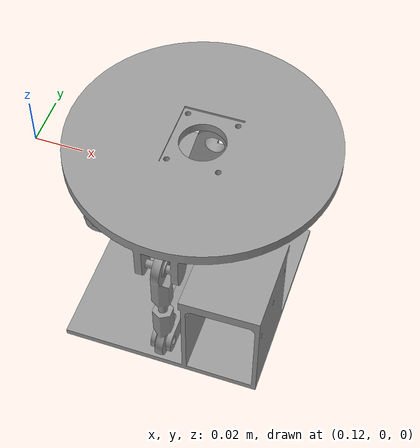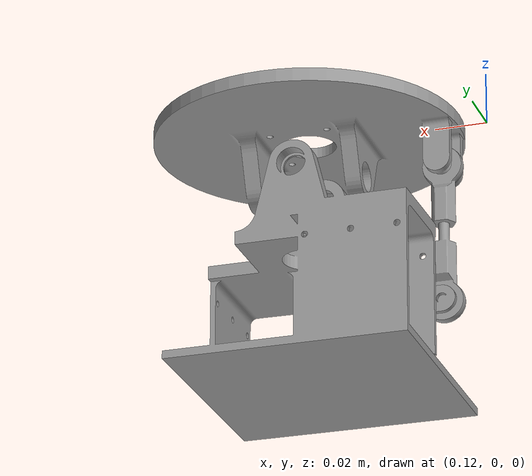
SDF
<?xml version='1.0'?>
<sdf version='1.7'>
  <model name='2dof_trial2'>
    <link name='link_0'>
      <inertial>
        <mass>1</mass>
        <inertia>
          <ixx>0.166667</ixx>
          <ixy>0</ixy>
          <ixz>0</ixz>
          <iyy>0.166667</iyy>
          <iyz>0</iyz>
          <izz>0.166667</izz>
        </inertia>
        <pose>0 0 0 0 -0 0</pose>
      </inertial>
      <pose>0.238173 -0.030635 -0.036457 0 -0 1.5707</pose>
      <gravity>1</gravity>
      <self_collide>1</self_collide>
      <kinematic>0</kinematic>
      <enable_wind>0</enable_wind>
      <visual name='visual'>
        <pose>0 0 0 0 -0 0</pose>
        <geometry>
          <mesh>
            <uri>/home/sid/plugin_ws/src/model/models/2dof_trial1/meshes/new_top_fixture.stl</uri>
            <scale>0.001 0.001 0.001</scale>
          </mesh>
        </geometry>
        <material>
          <lighting>1</lighting>
          <script>
            <uri>file://media/materials/scripts/gazebo.material</uri>
            <name>Gazebo/Grey</name>
          </script>
          <shader type='pixel'>
            <normal_map>__default__</normal_map>
          </shader>
          <ambient>0.3 0.3 0.3 1</ambient>
          <diffuse>0.7 0.7 0.7 1</diffuse>
          <specular>0.01 0.01 0.01 1</specular>
          <emissive>0 0 0 1</emissive>
        </material>
        <transparency>0</transparency>
        <cast_shadows>1</cast_shadows>
      </visual>
      <collision name='collision'>
        <laser_retro>0</laser_retro>
        <max_contacts>10</max_contacts>
        <pose>0 0 0 0 -0 0</pose>
        <geometry>
          <mesh>
            <uri>/home/sid/plugin_ws/src/model/models/2dof_trial1/meshes/new_top_fixture.stl</uri>
            <scale>0.001 0.001 0.001</scale>
          </mesh>
        </geometry>
        <surface>
          <friction>
            <ode>
              <mu>1</mu>
              <mu2>1</mu2>
              <fdir1>0 0 0</fdir1>
              <slip1>0</slip1>
              <slip2>0</slip2>
            </ode>
            <torsional>
              <coefficient>1</coefficient>
              <patch_radius>0</patch_radius>
              <surface_radius>0</surface_radius>
              <use_patch_radius>1</use_patch_radius>
              <ode>
                <slip>0</slip>
              </ode>
            </torsional>
          </friction>
          <bounce>
            <restitution_coefficient>0</restitution_coefficient>
            <threshold>1e+06</threshold>
          </bounce>
          <contact>
            <collide_without_contact>0</collide_without_contact>
            <collide_without_contact_bitmask>1</collide_without_contact_bitmask>
            <collide_bitmask>1</collide_bitmask>
            <ode>
              <soft_cfm>0</soft_cfm>
              <soft_erp>0.2</soft_erp>
              <kp>1e+13</kp>
              <kd>1</kd>
              <max_vel>0.01</max_vel>
              <min_depth>0</min_depth>
            </ode>
            <bullet>
              <split_impulse>1</split_impulse>
              <split_impulse_penetration_threshold>-0.01</split_impulse_penetration_threshold>
              <soft_cfm>0</soft_cfm>
              <soft_erp>0.2</soft_erp>
              <kp>1e+13</kp>
              <kd>1</kd>
            </bullet>
          </contact>
        </surface>
      </collision>
    </link>
    <link name='link_1'>
      <inertial>
        <mass>1</mass>
        <inertia>
          <ixx>0.166667</ixx>
          <ixy>0</ixy>
          <ixz>0</ixz>
          <iyy>0.166667</iyy>
          <iyz>0</iyz>
          <izz>0.166667</izz>
        </inertia>
        <pose>0 0 0 0 -0 0</pose>
      </inertial>
      <pose>0.122184 0.019356 -0.08847 0 -1e-06 0</pose>
      <gravity>1</gravity>
      <self_collide>1</self_collide>
      <kinematic>0</kinematic>
      <enable_wind>0</enable_wind>
      <visual name='visual'>
        <pose>0 0 0 0 -0 0</pose>
        <geometry>
          <mesh>
            <uri>/home/sid/plugin_ws/src/model/models/2dof_trial1/meshes/link2.stl</uri>
            <scale>0.001 0.001 0.001</scale>
          </mesh>
        </geometry>
        <material>
          <lighting>1</lighting>
          <script>
            <uri>file://media/materials/scripts/gazebo.material</uri>
            <name>Gazebo/Grey</name>
          </script>
          <shader type='pixel'>
            <normal_map>__default__</normal_map>
          </shader>
          <ambient>0.3 0.3 0.3 1</ambient>
          <diffuse>0.7 0.7 0.7 1</diffuse>
          <specular>0.01 0.01 0.01 1</specular>
          <emissive>0 0 0 1</emissive>
        </material>
        <transparency>0</transparency>
        <cast_shadows>1</cast_shadows>
      </visual>
      <collision name='collision'>
        <laser_retro>0</laser_retro>
        <max_contacts>10</max_contacts>
        <pose>0 0 0 0 -0 0</pose>
        <geometry>
          <mesh>
            <uri>/home/sid/plugin_ws/src/model/models/2dof_trial1/meshes/link2.stl</uri>
            <scale>0.001 0.001 0.001</scale>
          </mesh>
        </geometry>
        <surface>
          <friction>
            <ode>
              <mu>1</mu>
              <mu2>1</mu2>
              <fdir1>0 0 0</fdir1>
              <slip1>0</slip1>
              <slip2>0</slip2>
            </ode>
            <torsional>
              <coefficient>1</coefficient>
              <patch_radius>0</patch_radius>
              <surface_radius>0</surface_radius>
              <use_patch_radius>1</use_patch_radius>
              <ode>
                <slip>0</slip>
              </ode>
            </torsional>
          </friction>
          <bounce>
            <restitution_coefficient>0</restitution_coefficient>
            <threshold>1e+06</threshold>
          </bounce>
          <contact>
            <collide_without_contact>0</collide_without_contact>
            <collide_without_contact_bitmask>1</collide_without_contact_bitmask>
            <collide_bitmask>1</collide_bitmask>
            <ode>
              <soft_cfm>0</soft_cfm>
              <soft_erp>0.2</soft_erp>
              <kp>1e+13</kp>
              <kd>1</kd>
              <max_vel>0.01</max_vel>
              <min_depth>0</min_depth>
            </ode>
            <bullet>
              <split_impulse>1</split_impulse>
              <split_impulse_penetration_threshold>-0.01</split_impulse_penetration_threshold>
              <soft_cfm>0</soft_cfm>
              <soft_erp>0.2</soft_erp>
              <kp>1e+13</kp>
              <kd>1</kd>
            </bullet>
          </contact>
        </surface>
      </collision>
    </link>
    <link name='link_1_clone'>
      <inertial>
        <mass>1</mass>
        <inertia>
          <ixx>0.166667</ixx>
          <ixy>0</ixy>
          <ixz>0</ixz>
          <iyy>0.166667</iyy>
          <iyz>0</iyz>
          <izz>0.166667</izz>
        </inertia>
        <pose>0 0 0 0 -0 0</pose>
      </inertial>
      <pose>0.18819 -0.031664 -0.088468 0 -0 1.5707</pose>
      <gravity>1</gravity>
      <self_collide>1</self_collide>
      <kinematic>0</kinematic>
      <enable_wind>0</enable_wind>
      <visual name='visual'>
        <pose>0 0 0 0 -0 0</pose>
        <geometry>
          <mesh>
            <uri>/home/sid/plugin_ws/src/model/models/2dof_trial1/meshes/link2.stl</uri>
            <scale>0.001 0.001 0.001</scale>
          </mesh>
        </geometry>
        <material>
          <lighting>1</lighting>
          <script>
            <uri>file://media/materials/scripts/gazebo.material</uri>
            <name>Gazebo/Grey</name>
          </script>
          <shader type='pixel'>
            <normal_map>__default__</normal_map>
          </shader>
          <ambient>0.3 0.3 0.3 1</ambient>
          <diffuse>0.7 0.7 0.7 1</diffuse>
          <specular>0.01 0.01 0.01 1</specular>
          <emissive>0 0 0 1</emissive>
        </material>
        <transparency>0</transparency>
        <cast_shadows>1</cast_shadows>
      </visual>
      <collision name='collision'>
        <laser_retro>0</laser_retro>
        <max_contacts>10</max_contacts>
        <pose>0 0 0 0 -0 0</pose>
        <geometry>
          <mesh>
            <uri>/home/sid/plugin_ws/src/model/models/2dof_trial1/meshes/link2.stl</uri>
            <scale>0.001 0.001 0.001</scale>
          </mesh>
        </geometry>
        <surface>
          <friction>
            <ode>
              <mu>1</mu>
              <mu2>1</mu2>
              <fdir1>0 0 0</fdir1>
              <slip1>0</slip1>
              <slip2>0</slip2>
            </ode>
            <torsional>
              <coefficient>1</coefficient>
              <patch_radius>0</patch_radius>
              <surface_radius>0</surface_radius>
              <use_patch_radius>1</use_patch_radius>
              <ode>
                <slip>0</slip>
              </ode>
            </torsional>
          </friction>
          <bounce>
            <restitution_coefficient>0</restitution_coefficient>
            <threshold>1e+06</threshold>
          </bounce>
          <contact>
            <collide_without_contact>0</collide_without_contact>
            <collide_without_contact_bitmask>1</collide_without_contact_bitmask>
            <collide_bitmask>1</collide_bitmask>
            <ode>
              <soft_cfm>0</soft_cfm>
              <soft_erp>0.2</soft_erp>
              <kp>1e+13</kp>
              <kd>1</kd>
              <max_vel>0.01</max_vel>
              <min_depth>0</min_depth>
            </ode>
            <bullet>
              <split_impulse>1</split_impulse>
              <split_impulse_penetration_threshold>-0.01</split_impulse_penetration_threshold>
              <soft_cfm>0</soft_cfm>
              <soft_erp>0.2</soft_erp>
              <kp>1e+13</kp>
              <kd>1</kd>
            </bullet>
          </contact>
        </surface>
      </collision>
    </link>
    <link name='link_3'>
      <inertial>
        <mass>1</mass>
        <inertia>
          <ixx>0.166667</ixx>
          <ixy>0</ixy>
          <ixz>0</ixz>
          <iyy>0.166667</iyy>
          <iyz>0</iyz>
          <izz>0.166667</izz>
        </inertia>
        <pose>0 0 0 0 -0 0</pose>
      </inertial>
      <pose>0.22197 -0.022765 -0.019461 3.14159 0.000193 3.14159</pose>
      <gravity>1</gravity>
      <self_collide>1</self_collide>
      <kinematic>0</kinematic>
      <enable_wind>0</enable_wind>
      <visual name='visual'>
        <pose>0 0 0 0 -0 0</pose>
        <geometry>
          <mesh>
            <uri>/home/sid/plugin_ws/src/model/models/2dof_trial1/meshes/new_bottom_fixture.stl</uri>
            <scale>0.001 0.001 0.001</scale>
          </mesh>
        </geometry>
        <material>
          <lighting>1</lighting>
          <script>
            <uri>file://media/materials/scripts/gazebo.material</uri>
            <name>Gazebo/Grey</name>
          </script>
          <shader type='pixel'>
            <normal_map>__default__</normal_map>
          </shader>
          <ambient>0.3 0.3 0.3 1</ambient>
          <diffuse>0.7 0.7 0.7 1</diffuse>
          <specular>0.01 0.01 0.01 1</specular>
          <emissive>0 0 0 1</emissive>
        </material>
        <transparency>0</transparency>
        <cast_shadows>1</cast_shadows>
      </visual>
      <collision name='collision'>
        <laser_retro>0</laser_retro>
        <max_contacts>10</max_contacts>
        <pose>0 0 0 0 -0 0</pose>
        <geometry>
          <mesh>
            <uri>/home/sid/plugin_ws/src/model/models/2dof_trial1/meshes/new_bottom_fixture.stl</uri>
            <scale>0.001 0.001 0.001</scale>
          </mesh>
        </geometry>
        <surface>
          <friction>
            <ode>
              <mu>1</mu>
              <mu2>1</mu2>
              <fdir1>0 0 0</fdir1>
              <slip1>0</slip1>
              <slip2>0</slip2>
            </ode>
            <torsional>
              <coefficient>1</coefficient>
              <patch_radius>0</patch_radius>
              <surface_radius>0</surface_radius>
              <use_patch_radius>1</use_patch_radius>
              <ode>
                <slip>0</slip>
              </ode>
            </torsional>
          </friction>
          <bounce>
            <restitution_coefficient>0</restitution_coefficient>
            <threshold>1e+06</threshold>
          </bounce>
          <contact>
            <collide_without_contact>0</collide_without_contact>
            <collide_without_contact_bitmask>1</collide_without_contact_bitmask>
            <collide_bitmask>1</collide_bitmask>
            <ode>
              <soft_cfm>0</soft_cfm>
              <soft_erp>0.2</soft_erp>
              <kp>1e+13</kp>
              <kd>1</kd>
              <max_vel>0.01</max_vel>
              <min_depth>0</min_depth>
            </ode>
            <bullet>
              <split_impulse>1</split_impulse>
              <split_impulse_penetration_threshold>-0.01</split_impulse_penetration_threshold>
              <soft_cfm>0</soft_cfm>
              <soft_erp>0.2</soft_erp>
              <kp>1e+13</kp>
              <kd>1</kd>
            </bullet>
          </contact>
        </surface>
      </collision>
    </link>
    <link name='link_4'>
      <inertial>
        <mass>1</mass>
        <inertia>
          <ixx>0.166667</ixx>
          <ixy>0</ixy>
          <ixz>0</ixz>
          <iyy>0.166667</iyy>
          <iyz>0</iyz>
          <izz>0.166667</izz>
        </inertia>
        <pose>0 0 0 0 -0 0</pose>
      </inertial>
      <pose>0.175684 0.022346 -0.091969 1.5707 -0 3.1414</pose>
      <gravity>1</gravity>
      <self_collide>1</self_collide>
      <kinematic>0</kinematic>
      <enable_wind>0</enable_wind>
      <visual name='visual'>
        <pose>0 0 0 0 -0 0</pose>
        <geometry>
          <mesh>
            <uri>/home/sid/plugin_ws/src/model/models/2dof_trial1/meshes/m_link.stl</uri>
            <scale>0.001 0.001 0.001</scale>
          </mesh>
        </geometry>
        <material>
          <lighting>1</lighting>
          <script>
            <uri>file://media/materials/scripts/gazebo.material</uri>
            <name>Gazebo/Grey</name>
          </script>
          <shader type='pixel'>
            <normal_map>__default__</normal_map>
          </shader>
          <ambient>0.3 0.3 0.3 1</ambient>
          <diffuse>0.7 0.7 0.7 1</diffuse>
          <specular>0.01 0.01 0.01 1</specular>
          <emissive>0 0 0 1</emissive>
        </material>
        <transparency>0</transparency>
        <cast_shadows>1</cast_shadows>
      </visual>
      <collision name='collision'>
        <laser_retro>0</laser_retro>
        <max_contacts>10</max_contacts>
        <pose>0 0 0 0 -0 0</pose>
        <geometry>
          <mesh>
            <uri>/home/sid/plugin_ws/src/model/models/2dof_trial1/meshes/m_link.stl</uri>
            <scale>0.001 0.001 0.001</scale>
          </mesh>
        </geometry>
        <surface>
          <friction>
            <ode>
              <mu>1</mu>
              <mu2>1</mu2>
              <fdir1>0 0 0</fdir1>
              <slip1>0</slip1>
              <slip2>0</slip2>
            </ode>
            <torsional>
              <coefficient>1</coefficient>
              <patch_radius>0</patch_radius>
              <surface_radius>0</surface_radius>
              <use_patch_radius>1</use_patch_radius>
              <ode>
                <slip>0</slip>
              </ode>
            </torsional>
          </friction>
          <bounce>
            <restitution_coefficient>0</restitution_coefficient>
            <threshold>1e+06</threshold>
          </bounce>
          <contact>
            <collide_without_contact>0</collide_without_contact>
            <collide_without_contact_bitmask>1</collide_without_contact_bitmask>
            <collide_bitmask>1</collide_bitmask>
            <ode>
              <soft_cfm>0</soft_cfm>
              <soft_erp>0.2</soft_erp>
              <kp>1e+13</kp>
              <kd>1</kd>
              <max_vel>0.01</max_vel>
              <min_depth>0</min_depth>
            </ode>
            <bullet>
              <split_impulse>1</split_impulse>
              <split_impulse_penetration_threshold>-0.01</split_impulse_penetration_threshold>
              <soft_cfm>0</soft_cfm>
              <soft_erp>0.2</soft_erp>
              <kp>1e+13</kp>
              <kd>1</kd>
            </bullet>
          </contact>
        </surface>
      </collision>
    </link>
    <link name='link_4_clone'>
      <inertial>
        <mass>1</mass>
        <inertia>
          <ixx>0.166667</ixx>
          <ixy>0</ixy>
          <ixz>0</ixz>
          <iyy>0.166667</iyy>
          <iyz>0</iyz>
          <izz>0.166667</izz>
        </inertia>
        <pose>0 0 0 0 -0 0</pose>
      </inertial>
      <pose>0.185184 0.021836 -0.091968 1.5707 -0 -1.5707</pose>
      <gravity>1</gravity>
      <self_collide>1</self_collide>
      <kinematic>0</kinematic>
      <enable_wind>0</enable_wind>
      <visual name='visual'>
        <pose>0 0 0 0 -0 0</pose>
        <geometry>
          <mesh>
            <uri>/home/sid/plugin_ws/src/model/models/2dof_trial1/meshes/m_link.stl</uri>
            <scale>0.001 0.001 0.001</scale>
          </mesh>
        </geometry>
        <material>
          <lighting>1</lighting>
          <script>
            <uri>file://media/materials/scripts/gazebo.material</uri>
            <name>Gazebo/Grey</name>
          </script>
          <shader type='pixel'>
            <normal_map>__default__</normal_map>
          </shader>
          <ambient>0.3 0.3 0.3 1</ambient>
          <diffuse>0.7 0.7 0.7 1</diffuse>
          <specular>0.01 0.01 0.01 1</specular>
          <emissive>0 0 0 1</emissive>
        </material>
        <transparency>0</transparency>
        <cast_shadows>1</cast_shadows>
      </visual>
      <collision name='collision'>
        <laser_retro>0</laser_retro>
        <max_contacts>10</max_contacts>
        <pose>0 0 0 0 -0 0</pose>
        <geometry>
          <mesh>
            <uri>/home/sid/plugin_ws/src/model/models/2dof_trial1/meshes/m_link.stl</uri>
            <scale>0.001 0.001 0.001</scale>
          </mesh>
        </geometry>
        <surface>
          <friction>
            <ode>
              <mu>1</mu>
              <mu2>1</mu2>
              <fdir1>0 0 0</fdir1>
              <slip1>0</slip1>
              <slip2>0</slip2>
            </ode>
            <torsional>
              <coefficient>1</coefficient>
              <patch_radius>0</patch_radius>
              <surface_radius>0</surface_radius>
              <use_patch_radius>1</use_patch_radius>
              <ode>
                <slip>0</slip>
              </ode>
            </torsional>
          </friction>
          <bounce>
            <restitution_coefficient>0</restitution_coefficient>
            <threshold>1e+06</threshold>
          </bounce>
          <contact>
            <collide_without_contact>0</collide_without_contact>
            <collide_without_contact_bitmask>1</collide_without_contact_bitmask>
            <collide_bitmask>1</collide_bitmask>
            <ode>
              <soft_cfm>0</soft_cfm>
              <soft_erp>0.2</soft_erp>
              <kp>1e+13</kp>
              <kd>1</kd>
              <max_vel>0.01</max_vel>
              <min_depth>0</min_depth>
            </ode>
            <bullet>
              <split_impulse>1</split_impulse>
              <split_impulse_penetration_threshold>-0.01</split_impulse_penetration_threshold>
              <soft_cfm>0</soft_cfm>
              <soft_erp>0.2</soft_erp>
              <kp>1e+13</kp>
              <kd>1</kd>
            </bullet>
          </contact>
        </surface>
      </collision>
    </link>
    <joint name='joint2' type='revolute'>
      <parent>link_3</parent>
      <child>link_4_clone</child>
      <pose>0.011 0.011 0.0045 0 -0 0</pose>
      <axis>
        <xyz>0 0 1</xyz>
        <limit>
          <lower>-1.79769e+308</lower>
          <upper>1.79769e+308</upper>
          <effort>-1</effort>
          <velocity>-1</velocity>
        </limit>
        <dynamics>
          <spring_reference>0</spring_reference>
          <spring_stiffness>0</spring_stiffness>
          <damping>0</damping>
          <friction>0</friction>
        </dynamics>
      </axis>
      <physics>
        <ode>
          <limit>
            <cfm>0</cfm>
            <erp>0.2</erp>
          </limit>
          <suspension>
            <cfm>0</cfm>
            <erp>0.2</erp>
          </suspension>
        </ode>
      </physics>
    </joint>
    <joint name='link3_joint1' type='revolute'>
      <parent>link_3</parent>
      <child>link_4</child>
      <pose>0.011 0.011 0.0045 0 -0 0</pose>
      <axis>
        <xyz>-0 -0 -1</xyz>
        <limit>
          <lower>-1.79769e+308</lower>
          <upper>1.79769e+308</upper>
          <effort>-1</effort>
          <velocity>-1</velocity>
        </limit>
        <dynamics>
          <spring_reference>0</spring_reference>
          <spring_stiffness>0</spring_stiffness>
          <damping>0</damping>
          <friction>0</friction>
        </dynamics>
      </axis>
      <physics>
        <ode>
          <limit>
            <cfm>0</cfm>
            <erp>0.2</erp>
          </limit>
          <suspension>
            <cfm>0</cfm>
            <erp>0.2</erp>
          </suspension>
        </ode>
      </physics>
    </joint>
    <joint name='link_1_JOINT_8' type='ball'>
      <parent>link_1</parent>
      <child>link_0</child>
      <pose>0.0572 0.1085 0.0085 0 -0 0</pose>
      <physics>
        <ode>
          <limit>
            <cfm>0</cfm>
            <erp>0.2</erp>
          </limit>
          <suspension>
            <cfm>0</cfm>
            <erp>0.2</erp>
          </suspension>
        </ode>
      </physics>
    </joint>
    <joint name='link_1_clone_JOINT_7' type='ball'>
      <parent>link_1_clone</parent>
      <child>link_0</child>
      <pose>0.0065 0.0572 0.0085 0 -0 0</pose>
      <physics>
        <ode>
          <limit>
            <cfm>0</cfm>
            <erp>0.2</erp>
          </limit>
          <suspension>
            <cfm>0</cfm>
            <erp>0.2</erp>
          </suspension>
        </ode>
      </physics>
    </joint>
    <joint name='link_3_JOINT_6' type='universal'>
      <parent>link_3</parent>
      <child>link_0</child>
      <pose>0.0575 0.0575 0.0085 0 -0 0</pose>
      <axis>
        <xyz>1 0 0</xyz>
        <limit>
          <lower>-1.79769e+308</lower>
          <upper>1.79769e+308</upper>
          <effort>-1</effort>
          <velocity>-1</velocity>
        </limit>
        <dynamics>
          <spring_reference>0</spring_reference>
          <spring_stiffness>0</spring_stiffness>
          <damping>0</damping>
          <friction>0</friction>
        </dynamics>
      </axis>
      <axis2>
        <xyz>0 1 0</xyz>
        <limit>
          <lower>-1.79769e+308</lower>
          <upper>1.79769e+308</upper>
          <effort>-1</effort>
          <velocity>-1</velocity>
        </limit>
        <dynamics>
          <spring_reference>0</spring_reference>
          <spring_stiffness>0</spring_stiffness>
          <damping>0</damping>
          <friction>0</friction>
        </dynamics>
      </axis2>
      <physics>
        <ode>
          <limit>
            <cfm>0</cfm>
            <erp>0.2</erp>
          </limit>
          <suspension>
            <cfm>0</cfm>
            <erp>0.2</erp>
          </suspension>
        </ode>
      </physics>
    </joint>
    <joint name='link_4_JOINT_2' type='ball'>
      <parent>link_4</parent>
      <child>link_1</child>
      <pose>0.0075 0.0075 0.0075 0 -0 0</pose>
      <physics>
        <ode>
          <limit>
            <cfm>0</cfm>
            <erp>0.2</erp>
          </limit>
          <suspension>
            <cfm>0</cfm>
            <erp>0.2</erp>
          </suspension>
        </ode>
      </physics>
    </joint>
    <joint name='link_4_clone_JOINT_3' type='ball'>
      <parent>link_4_clone</parent>
      <child>link_1_clone</child>
      <pose>0.0075 0.0075 0.0075 0 -0 0</pose>
      <physics>
        <ode>
          <limit>
            <cfm>0</cfm>
            <erp>0.2</erp>
          </limit>
          <suspension>
            <cfm>0</cfm>
            <erp>0.2</erp>
          </suspension>
        </ode>
      </physics>
    </joint>
    <static>0</static>
    <allow_auto_disable>1</allow_auto_disable>
    <plugin name='joint_pose' filename='libjoint_pose.so'>
      <namespace_model>simple_robot</namespace_model>
      <activate_pid_control>yes</activate_pid_control>
      <kp>0.1</kp>
      <ki>0</ki>
      <kd>10</kd>
      <robotNamespace>/</robotNamespace>
    </plugin>
  </model>
</sdf>
